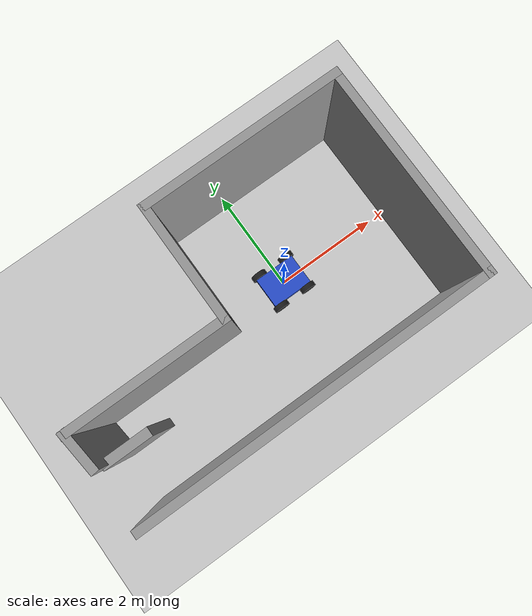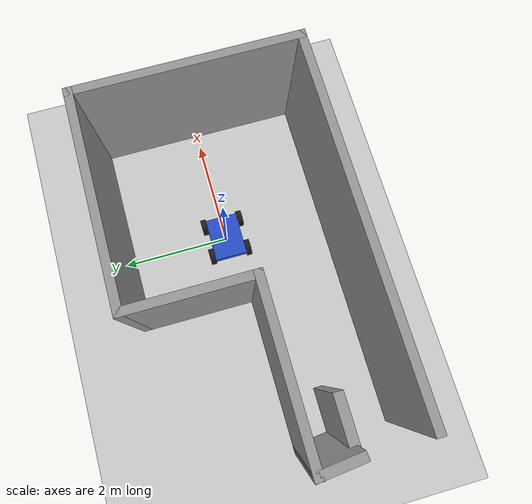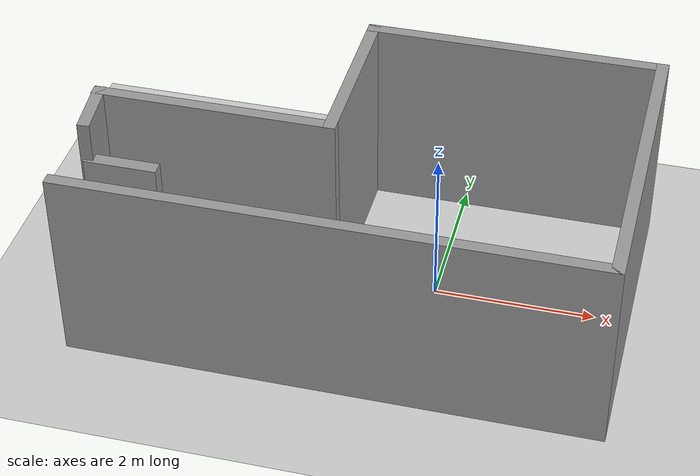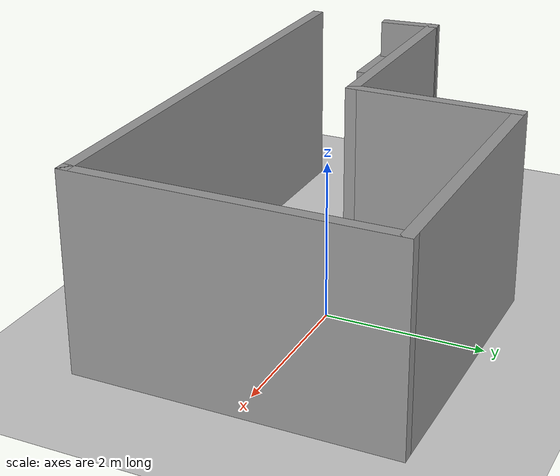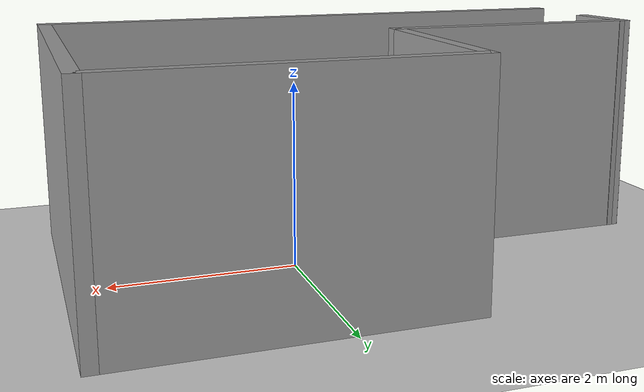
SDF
<sdf version="1.6">
 <world name="default">
  <light name="sun" type="directional">
   <pose>0 0 10 0 -0 0</pose>
   <diffuse>0.8 0.8 0.8 1</diffuse>
   <specular>0.2 0.2 0.2 1</specular>
   <attenuation>
    <range>1000</range>
    <constant>0.9</constant>
    <linear>0.01</linear>
    <quadratic>0.001</quadratic>
   </attenuation>
   <direction>-0.5 0.1 -0.9</direction>
  </light>
  <model name="ground_plane">
   <static>1</static>
   <link name="link">
    <collision name="collision">
     <geometry><plane><normal>0 0 1</normal><size>100 100</size></plane></geometry>
     <surface><friction><ode><mu>100</mu><mu2>50</mu2></ode></friction></surface>
    </collision>
    <visual name="visual">
     <cast_shadows>0</cast_shadows>
     <geometry><plane><normal>0 0 1</normal><size>100 100</size></plane></geometry>
     <material>
      <script><uri>file://media/materials/scripts/gazebo.material</uri><name>Gazebo/Grey</name></script>
     </material>
    </visual>
   </link>
  </model>
  <gravity>0 0 -9.8</gravity>
  <magnetic_field>6e-06 2.3e-05 -4.2e-05</magnetic_field>
  <atmosphere type="adiabatic"/>
  <physics name="default_physics" default="0" type="ode">
   <max_step_size>0.001</max_step_size>
   <real_time_factor>1</real_time_factor>
   <real_time_update_rate>1000</real_time_update_rate>
  </physics>
  <scene><ambient>0.4 0.4 0.4 1</ambient><background>0.7 0.7 0.7 1</background><shadows>1</shadows></scene>
  <spherical_coordinates>
   <surface_model>EARTH_WGS84</surface_model>
   <latitude_deg>0</latitude_deg>
   <longitude_deg>0</longitude_deg>
   <elevation>0</elevation>
   <heading_deg>0</heading_deg>
  </spherical_coordinates>
  <model name="mrobot">
   <link name="base_link">
    <inertial>
     <mass>20</mass>
     <inertia><ixx>1.325</ixx><ixy>0</ixy><ixz>0</ixz><iyy>20</iyy><iyz>0</iyz><izz>7.65</izz></inertia>
    </inertial>
    <collision name="base_link_collision"><geometry><box><size>0.8 0.6 0.15</size></box></geometry></collision>
    <visual name="base_link_visual">
     <geometry><box><size>0.8 0.6 0.15</size></box></geometry>
     <material>
      <script><name>Gazebo/Blue</name><uri>file://media/materials/scripts/gazebo.material</uri></script>
     </material>
    </visual>
   </link>
   <link name="left_back_wheel_link">
    <pose>-0.3 0.35 0 0 -0 0</pose>
    <inertial>
     <mass>1</mass>
     <inertia><ixx>0.00775</ixx><ixy>0</ixy><ixz>0</ixz><iyy>0.00775</iyy><iyz>0</iyz><izz>0.01125</izz></inertia>
    </inertial>
    <collision name="left_back_wheel_link_collision">
     <pose>0 0 0 1.5708 -0 0</pose>
     <geometry><cylinder><length>0.1</length><radius>0.15</radius></cylinder></geometry>
    </collision>
    <visual name="left_back_wheel_link_visual">
     <pose>0 0 0 1.5708 -0 0</pose>
     <geometry><cylinder><length>0.1</length><radius>0.15</radius></cylinder></geometry>
     <material>
      <script><name>Gazebo/Black</name><uri>file://media/materials/scripts/gazebo.material</uri></script>
     </material>
    </visual>
   </link>
   <joint name="left_back_wheel_joint" type="revolute">
    <child>left_back_wheel_link</child>
    <parent>base_link</parent>
    <axis>
     <xyz>0 1 0</xyz>
     <limit><lower>-1e+16</lower><upper>1e+16</upper></limit>
     <dynamics><spring_reference>0</spring_reference><spring_stiffness>0</spring_stiffness></dynamics>
     <use_parent_model_frame>1</use_parent_model_frame>
    </axis>
   </joint>
   <link name="left_front_wheel_link">
    <pose>0.3 0.35 0 0 -0 0</pose>
    <inertial>
     <mass>1</mass>
     <inertia><ixx>0.00775</ixx><ixy>0</ixy><ixz>0</ixz><iyy>0.00775</iyy><iyz>0</iyz><izz>0.01125</izz></inertia>
    </inertial>
    <collision name="left_front_wheel_link_collision">
     <pose>0 0 0 1.5708 -0 0</pose>
     <geometry><cylinder><length>0.1</length><radius>0.15</radius></cylinder></geometry>
    </collision>
    <visual name="left_front_wheel_link_visual">
     <pose>0 0 0 1.5708 -0 0</pose>
     <geometry><cylinder><length>0.1</length><radius>0.15</radius></cylinder></geometry>
     <material>
      <script><name>Gazebo/Black</name><uri>file://media/materials/scripts/gazebo.material</uri></script>
     </material>
    </visual>
   </link>
   <joint name="left_front_wheel_joint" type="revolute">
    <child>left_front_wheel_link</child>
    <parent>base_link</parent>
    <axis>
     <xyz>0 1 0</xyz>
     <limit><lower>-1e+16</lower><upper>1e+16</upper></limit>
     <dynamics><spring_reference>0</spring_reference><spring_stiffness>0</spring_stiffness></dynamics>
     <use_parent_model_frame>1</use_parent_model_frame>
    </axis>
   </joint>
   <link name="right_back_wheel_link">
    <pose>-0.3 -0.35 0 0 -0 0</pose>
    <inertial>
     <mass>1</mass>
     <inertia><ixx>0.00775</ixx><ixy>0</ixy><ixz>0</ixz><iyy>0.00775</iyy><iyz>0</iyz><izz>0.01125</izz></inertia>
    </inertial>
    <collision name="right_back_wheel_link_collision">
     <pose>0 0 0 1.5708 -0 0</pose>
     <geometry><cylinder><length>0.1</length><radius>0.15</radius></cylinder></geometry>
    </collision>
    <visual name="right_back_wheel_link_visual">
     <pose>0 0 0 1.5708 -0 0</pose>
     <geometry><cylinder><length>0.1</length><radius>0.15</radius></cylinder></geometry>
     <material>
      <script><name>Gazebo/Black</name><uri>file://media/materials/scripts/gazebo.material</uri></script>
     </material>
    </visual>
   </link>
   <joint name="right_back_wheel_joint" type="revolute">
    <child>right_back_wheel_link</child>
    <parent>base_link</parent>
    <axis>
     <xyz>0 1 0</xyz>
     <limit><lower>-1e+16</lower><upper>1e+16</upper></limit>
     <dynamics><spring_reference>0</spring_reference><spring_stiffness>0</spring_stiffness></dynamics>
     <use_parent_model_frame>1</use_parent_model_frame>
    </axis>
   </joint>
   <link name="right_front_wheel_link">
    <pose>0.3 -0.35 0 0 -0 0</pose>
    <inertial>
     <mass>1</mass>
     <inertia><ixx>0.00775</ixx><ixy>0</ixy><ixz>0</ixz><iyy>0.00775</iyy><iyz>0</iyz><izz>0.01125</izz></inertia>
    </inertial>
    <collision name="right_front_wheel_link_collision">
     <pose>0 0 0 1.5708 -0 0</pose>
     <geometry><cylinder><length>0.1</length><radius>0.15</radius></cylinder></geometry>
    </collision>
    <visual name="right_front_wheel_link_visual">
     <pose>0 0 0 1.5708 -0 0</pose>
     <geometry><cylinder><length>0.1</length><radius>0.15</radius></cylinder></geometry>
     <material>
      <script><name>Gazebo/Black</name><uri>file://media/materials/scripts/gazebo.material</uri></script>
     </material>
    </visual>
   </link>
   <joint name="right_front_wheel_joint" type="revolute">
    <child>right_front_wheel_link</child>
    <parent>base_link</parent>
    <axis>
     <xyz>0 1 0</xyz>
     <limit><lower>-1e+16</lower><upper>1e+16</upper></limit>
     <dynamics><spring_reference>0</spring_reference><spring_stiffness>0</spring_stiffness></dynamics>
     <use_parent_model_frame>1</use_parent_model_frame>
    </axis>
   </joint>
   <static>0</static>
   <plugin name="differential_drive_controller" filename="libgazebo_ros_diff_drive.so">
    <rosDebugLevel>Debug</rosDebugLevel>
    <publishWheelTF>true</publishWheelTF>
    <robotNamespace>/</robotNamespace>
    <publishTf>1</publishTf>
    <publishWheelJointState>true</publishWheelJointState>
    <alwaysOn>true</alwaysOn>
    <updateRate>100.0</updateRate>
    <legacyMode>true</legacyMode>
    <leftJoint>left_front_wheel_joint</leftJoint>
    <rightJoint>right_front_wheel_joint</rightJoint>
    <wheelSeparation>0.6</wheelSeparation>
    <wheelDiameter>0.3</wheelDiameter>
    <broadcastTF>1</broadcastTF>
    <wheelTorque>30</wheelTorque>
    <wheelAcceleration>1.8</wheelAcceleration>
    <commandTopic>cmd_vel</commandTopic>
    <odometryFrame>odom</odometryFrame>
    <odometryTopic>odom</odometryTopic>
    <robotBaseFrame>base_footprint</robotBaseFrame>
   </plugin>
   <pose>-0.000838 -0.002534 0.15 0 -1e-06 -0.000323</pose>
  </model>
  <model name="test">
   <pose>-0.878575 -0.045 0 0 -0 0</pose>
   <link name="Door_0">
    <collision name="Door_0_Collision">
     <geometry><box><size>0.9 0.17 2</size></box></geometry>
     <pose>0 0 1 0 -0 0</pose>
    </collision>
    <visual name="Door_0_Visual">
     <pose>0 0 1 0 -0 0</pose>
     <geometry><box><size>0.9 0.17 2</size></box></geometry>
     <material>
      <script><uri>file://media/materials/scripts/gazebo.material</uri><name>Gazebo/Grey</name></script>
     </material>
    </visual>
    <pose>-2.74049 -0.843501 0 0 -0 0</pose>
   </link>
   <link name="Wall_0">
    <collision name="Wall_0_Collision">
     <geometry><box><size>6.5 0.15 2.5</size></box></geometry>
     <pose>0 0 1.25 0 -0 0</pose>
    </collision>
    <visual name="Wall_0_Visual">
     <pose>0 0 1.25 0 -0 0</pose>
     <geometry><box><size>6.5 0.15 2.5</size></box></geometry>
     <material>
      <script><uri>file://media/materials/scripts/gazebo.material</uri><name>Gazebo/Grey</name></script>
      <ambient>1 1 1 1</ambient>
     </material>
     <meta><layer>0</layer></meta>
    </visual>
    <pose>0.053575 -1.925 0 0 -0 3.14159</pose>
   </link>
   <link name="Wall_10">
    <collision name="Wall_10_Collision">
     <geometry><box><size>0.798066 0.15 2.5</size></box></geometry>
     <pose>0 0 1.25 0 -0 0</pose>
    </collision>
    <visual name="Wall_10_Visual">
     <pose>0 0 1.25 0 -0 0</pose>
     <geometry><box><size>0.798066 0.15 2.5</size></box></geometry>
     <material>
      <script><uri>file://media/materials/scripts/gazebo.material</uri><name>Gazebo/Grey</name></script>
      <ambient>1 1 1 1</ambient>
     </material>
     <meta><layer>0</layer></meta>
    </visual>
    <pose>-3.18889 -0.497396 0 0 -0 1.67136</pose>
   </link>
   <link name="Wall_3">
    <collision name="Wall_3_Collision">
     <geometry><box><size>4 0.15 2.5</size></box></geometry>
     <pose>0 0 1.25 0 -0 0</pose>
    </collision>
    <visual name="Wall_3_Visual">
     <pose>0 0 1.25 0 -0 0</pose>
     <geometry><box><size>4 0.15 2.5</size></box></geometry>
     <material>
      <script><uri>file://media/materials/scripts/gazebo.material</uri><name>Gazebo/Grey</name></script>
      <ambient>1 1 1 1</ambient>
     </material>
     <meta><layer>0</layer></meta>
    </visual>
    <pose>3.22858 0 0 0 -0 1.5708</pose>
   </link>
   <link name="Wall_4">
    <collision name="Wall_4_Collision">
     <geometry><box><size>3.75 0.15 2.5</size></box></geometry>
     <pose>0 0 1.25 0 -0 0</pose>
    </collision>
    <visual name="Wall_4_Visual">
     <pose>0 0 1.25 0 -0 0</pose>
     <geometry><box><size>3.75 0.15 2.5</size></box></geometry>
     <material>
      <script><uri>file://media/materials/scripts/gazebo.material</uri><name>Gazebo/Grey</name></script>
      <ambient>1 1 1 1</ambient>
     </material>
     <meta><layer>0</layer></meta>
    </visual>
    <pose>1.42857 1.925 0 0 -0 3.14159</pose>
   </link>
   <link name="Wall_5">
    <collision name="Wall_5_Collision">
     <geometry><box><size>2.25 0.15 2.5</size></box></geometry>
     <pose>0 0 1.25 0 -0 0</pose>
    </collision>
    <visual name="Wall_5_Visual">
     <pose>0 0 1.25 0 -0 0</pose>
     <geometry><box><size>2.25 0.15 2.5</size></box></geometry>
     <material>
      <script><uri>file://media/materials/scripts/gazebo.material</uri><name>Gazebo/Grey</name></script>
      <ambient>1 1 1 1</ambient>
     </material>
     <meta><layer>0</layer></meta>
    </visual>
    <pose>-0.371425 0.875 0 0 0 -1.5708</pose>
   </link>
   <link name="Wall_6">
    <collision name="Wall_6_Collision">
     <geometry><box><size>3 0.15 2.5</size></box></geometry>
     <pose>0 0 1.25 0 -0 0</pose>
    </collision>
    <visual name="Wall_6_Visual">
     <pose>0 0 1.25 0 -0 0</pose>
     <geometry><box><size>3 0.15 2.5</size></box></geometry>
     <material>
      <script><uri>file://media/materials/scripts/gazebo.material</uri><name>Gazebo/Grey</name></script>
      <ambient>1 1 1 1</ambient>
     </material>
     <meta><layer>0</layer></meta>
    </visual>
    <pose>-1.79642 -0.175 0 0 -0 3.14159</pose>
   </link>
   <static>1</static>
  </model>
 </world>
</sdf>
